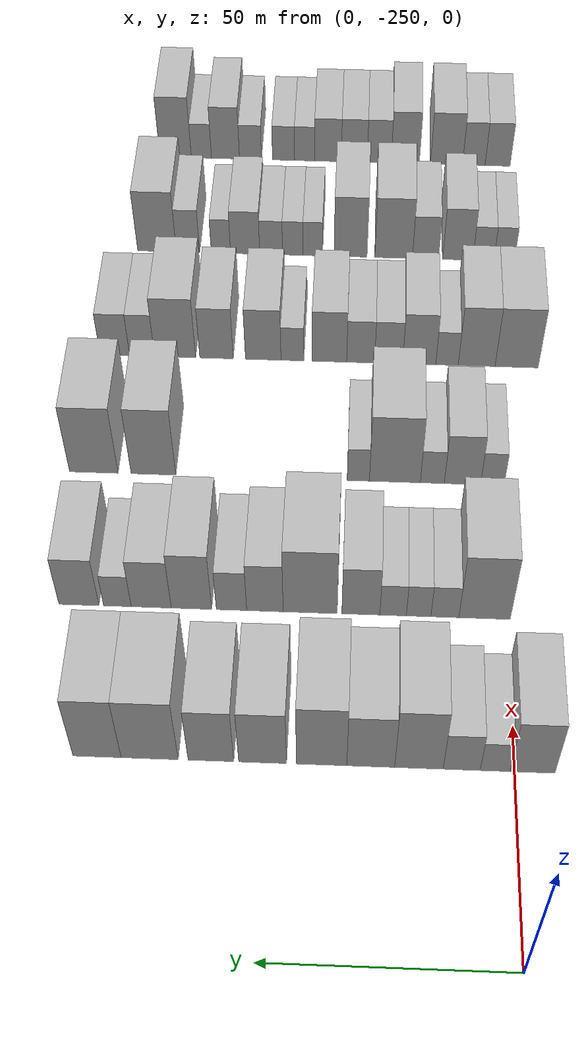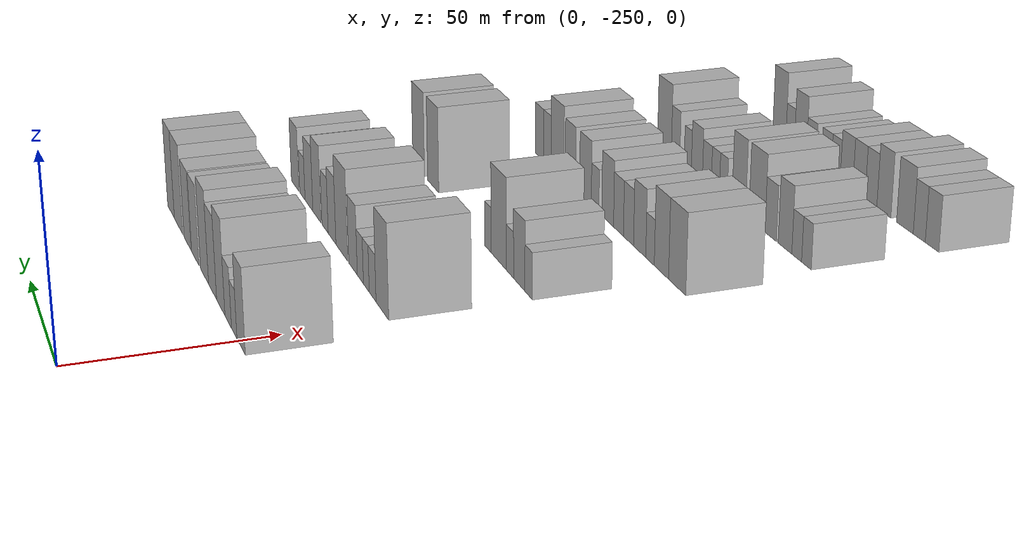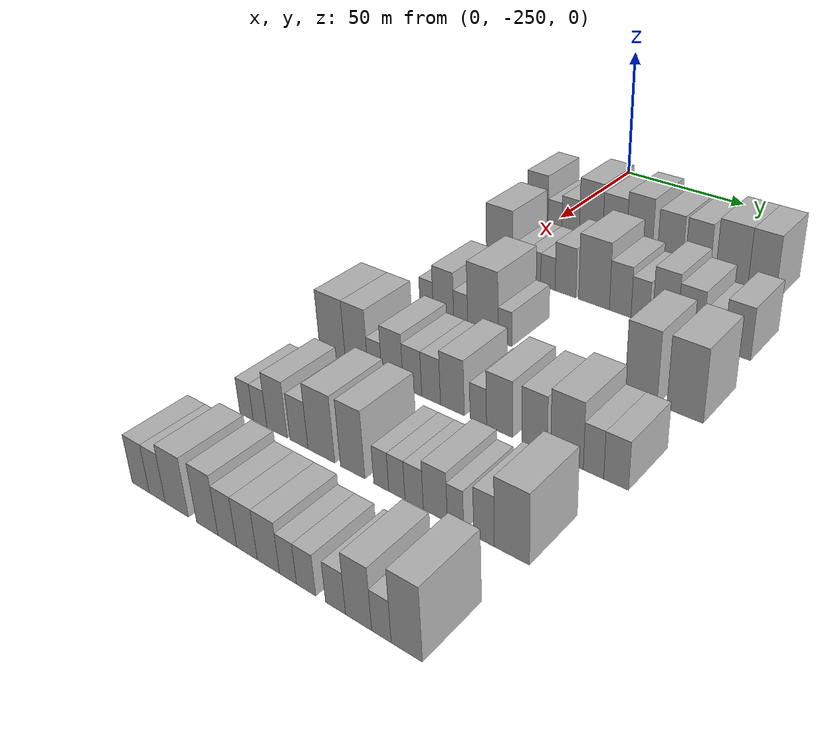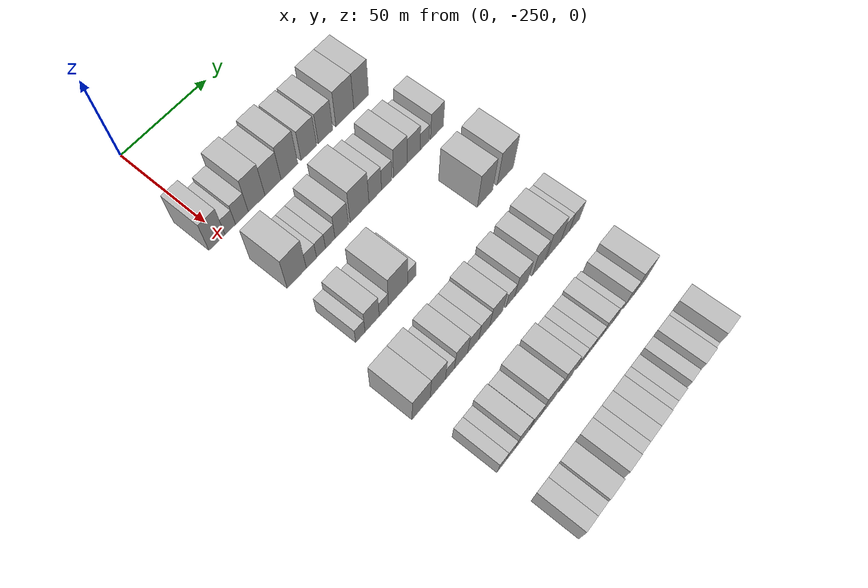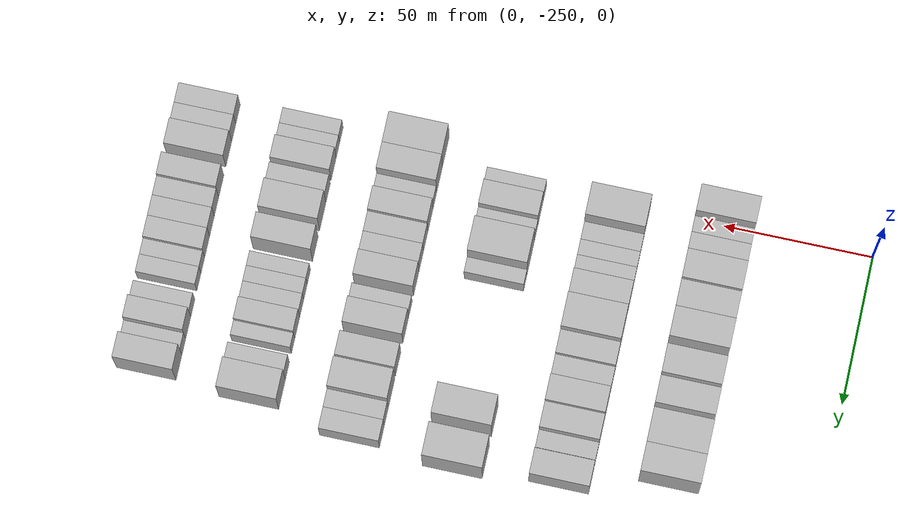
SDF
<sdf version="1.6">
 <world name="default">
  <model name="building_36">
   <static>1</static>
   <pose>50.0000 -253.5233 0 0.000000 0.000000 0.000000</pose>
   <link name="link">
    <pose>0 0 10.50 0 0 0</pose>
    <collision name="collision"><geometry><box><size>20.0000 9.0336 21.0000</size></box></geometry></collision>
    <visual name="visual">
     <cast_shadows>0</cast_shadows>
     <geometry><box><size>20.0000 9.0336 21.0000</size></box></geometry>
     <material>
      <script>
       <uri>model://HANNAS_wall/materials/scripts</uri>
       <uri>model://HANNAS_wall/materials/textures</uri>
       <name>vrc/HANNAS_wall</name>
      </script>
     </material>
    </visual>
   </link>
  </model>
  <model name="building_37">
   <static>1</static>
   <pose>50.0000 -246.0254 0 0.000000 0.000000 0.000000</pose>
   <link name="link">
    <pose>0 0 6.00 0 0 0</pose>
    <collision name="collision"><geometry><box><size>20.0000 5.9621 12.0000</size></box></geometry></collision>
    <visual name="visual">
     <cast_shadows>0</cast_shadows>
     <geometry><box><size>20.0000 5.9621 12.0000</size></box></geometry>
     <material>
      <script>
       <uri>model://HANNAS_wall/materials/scripts</uri>
       <uri>model://HANNAS_wall/materials/textures</uri>
       <name>vrc/HANNAS_wall</name>
      </script>
     </material>
    </visual>
   </link>
  </model>
  <model name="building_38">
   <static>1</static>
   <pose>50.0000 -239.3330 0 0.000000 0.000000 0.000000</pose>
   <link name="link">
    <pose>0 0 7.50 0 0 0</pose>
    <collision name="collision"><geometry><box><size>20.0000 7.4227 15.0000</size></box></geometry></collision>
    <visual name="visual">
     <cast_shadows>0</cast_shadows>
     <geometry><box><size>20.0000 7.4227 15.0000</size></box></geometry>
     <material>
      <script>
       <uri>model://HANNAS_wall/materials/scripts</uri>
       <uri>model://HANNAS_wall/materials/textures</uri>
       <name>vrc/HANNAS_wall</name>
      </script>
     </material>
    </visual>
   </link>
  </model>
  <model name="building_39">
   <static>1</static>
   <pose>50.0000 -230.7598 0 0.000000 0.000000 0.000000</pose>
   <link name="link">
    <pose>0 0 12.00 0 0 0</pose>
    <collision name="collision"><geometry><box><size>20.0000 9.7237 24.0000</size></box></geometry></collision>
    <visual name="visual">
     <cast_shadows>0</cast_shadows>
     <geometry><box><size>20.0000 9.7237 24.0000</size></box></geometry>
     <material>
      <script>
       <uri>model://HANNAS_wall/materials/scripts</uri>
       <uri>model://HANNAS_wall/materials/textures</uri>
       <name>vrc/HANNAS_wall</name>
      </script>
     </material>
    </visual>
   </link>
  </model>
  <model name="building_40">
   <static>1</static>
   <pose>50.0000 -221.0899 0 0.000000 0.000000 0.000000</pose>
   <link name="link">
    <pose>0 0 10.50 0 0 0</pose>
    <collision name="collision"><geometry><box><size>20.0000 9.6162 21.0000</size></box></geometry></collision>
    <visual name="visual">
     <cast_shadows>0</cast_shadows>
     <geometry><box><size>20.0000 9.6162 21.0000</size></box></geometry>
     <material>
      <script>
       <uri>model://HANNAS_wall/materials/scripts</uri>
       <uri>model://HANNAS_wall/materials/textures</uri>
       <name>vrc/HANNAS_wall</name>
      </script>
     </material>
    </visual>
   </link>
  </model>
  <model name="building_41">
   <static>1</static>
   <pose>50.0000 -211.2209 0 0.000000 0.000000 0.000000</pose>
   <link name="link">
    <pose>0 0 12.00 0 0 0</pose>
    <collision name="collision"><geometry><box><size>20.0000 10.1218 24.0000</size></box></geometry></collision>
    <visual name="visual">
     <cast_shadows>0</cast_shadows>
     <geometry><box><size>20.0000 10.1218 24.0000</size></box></geometry>
     <material>
      <script>
       <uri>model://HANNAS_wall/materials/scripts</uri>
       <uri>model://HANNAS_wall/materials/textures</uri>
       <name>vrc/HANNAS_wall</name>
      </script>
     </material>
    </visual>
   </link>
  </model>
  <model name="building_42">
   <static>1</static>
   <pose>50.0000 -199.3403 0 0.000000 0.000000 0.000000</pose>
   <link name="link">
    <pose>0 0 10.50 0 0 0</pose>
    <collision name="collision"><geometry><box><size>20.0000 9.6392 21.0000</size></box></geometry></collision>
    <visual name="visual">
     <cast_shadows>0</cast_shadows>
     <geometry><box><size>20.0000 9.6392 21.0000</size></box></geometry>
     <material>
      <script>
       <uri>model://HANNAS_wall/materials/scripts</uri>
       <uri>model://HANNAS_wall/materials/textures</uri>
       <name>vrc/HANNAS_wall</name>
      </script>
     </material>
    </visual>
   </link>
  </model>
  <model name="building_43">
   <static>1</static>
   <pose>50.0000 -188.9205 0 0.000000 0.000000 0.000000</pose>
   <link name="link">
    <pose>0 0 10.50 0 0 0</pose>
    <collision name="collision"><geometry><box><size>20.0000 9.2004 21.0000</size></box></geometry></collision>
    <visual name="visual">
     <cast_shadows>0</cast_shadows>
     <geometry><box><size>20.0000 9.2004 21.0000</size></box></geometry>
     <material>
      <script>
       <uri>model://HANNAS_wall/materials/scripts</uri>
       <uri>model://HANNAS_wall/materials/textures</uri>
       <name>vrc/HANNAS_wall</name>
      </script>
     </material>
    </visual>
   </link>
  </model>
  <model name="building_44">
   <static>1</static>
   <pose>50.0000 -176.5398 0 0.000000 0.000000 0.000000</pose>
   <link name="link">
    <pose>0 0 12.00 0 0 0</pose>
    <collision name="collision"><geometry><box><size>20.0000 11.5611 24.0000</size></box></geometry></collision>
    <visual name="visual">
     <cast_shadows>0</cast_shadows>
     <geometry><box><size>20.0000 11.5611 24.0000</size></box></geometry>
     <material>
      <script>
       <uri>model://HANNAS_wall/materials/scripts</uri>
       <uri>model://HANNAS_wall/materials/textures</uri>
       <name>vrc/HANNAS_wall</name>
      </script>
     </material>
    </visual>
   </link>
  </model>
  <model name="building_45">
   <static>1</static>
   <pose>50.0000 -165.8892 0 0.000000 0.000000 0.000000</pose>
   <link name="link">
    <pose>0 0 12.00 0 0 0</pose>
    <collision name="collision"><geometry><box><size>20.0000 9.7400 24.0000</size></box></geometry></collision>
    <visual name="visual">
     <cast_shadows>0</cast_shadows>
     <geometry><box><size>20.0000 9.7400 24.0000</size></box></geometry>
     <material>
      <script>
       <uri>model://HANNAS_wall/materials/scripts</uri>
       <uri>model://HANNAS_wall/materials/textures</uri>
       <name>vrc/HANNAS_wall</name>
      </script>
     </material>
    </visual>
   </link>
  </model>
  <model name="building_161">
   <static>1</static>
   <pose>85.0000 -244.9627 0 0.000000 0.000000 0.000000</pose>
   <link name="link">
    <pose>0 0 12.00 0 0 0</pose>
    <collision name="collision"><geometry><box><size>20.0000 11.0042 24.0000</size></box></geometry></collision>
    <visual name="visual">
     <cast_shadows>0</cast_shadows>
     <geometry><box><size>20.0000 11.0042 24.0000</size></box></geometry>
     <material>
      <script>
       <uri>model://HANNAS_wall/materials/scripts</uri>
       <uri>model://HANNAS_wall/materials/textures</uri>
       <name>vrc/HANNAS_wall</name>
      </script>
     </material>
    </visual>
   </link>
  </model>
  <model name="building_162">
   <static>1</static>
   <pose>85.0000 -236.4675 0 0.000000 0.000000 0.000000</pose>
   <link name="link">
    <pose>0 0 6.00 0 0 0</pose>
    <collision name="collision"><geometry><box><size>20.0000 5.9862 12.0000</size></box></geometry></collision>
    <visual name="visual">
     <cast_shadows>0</cast_shadows>
     <geometry><box><size>20.0000 5.9862 12.0000</size></box></geometry>
     <material>
      <script>
       <uri>model://HANNAS_wall/materials/scripts</uri>
       <uri>model://HANNAS_wall/materials/textures</uri>
       <name>vrc/HANNAS_wall</name>
      </script>
     </material>
    </visual>
   </link>
  </model>
  <model name="building_163">
   <static>1</static>
   <pose>85.0000 -230.8353 0 0.000000 0.000000 0.000000</pose>
   <link name="link">
    <pose>0 0 6.00 0 0 0</pose>
    <collision name="collision"><geometry><box><size>20.0000 5.2783 12.0000</size></box></geometry></collision>
    <visual name="visual">
     <cast_shadows>0</cast_shadows>
     <geometry><box><size>20.0000 5.2783 12.0000</size></box></geometry>
     <material>
      <script>
       <uri>model://HANNAS_wall/materials/scripts</uri>
       <uri>model://HANNAS_wall/materials/textures</uri>
       <name>vrc/HANNAS_wall</name>
      </script>
     </material>
    </visual>
   </link>
  </model>
  <model name="building_164">
   <static>1</static>
   <pose>85.0000 -225.3508 0 0.000000 0.000000 0.000000</pose>
   <link name="link">
    <pose>0 0 6.00 0 0 0</pose>
    <collision name="collision"><geometry><box><size>20.0000 5.6907 12.0000</size></box></geometry></collision>
    <visual name="visual">
     <cast_shadows>0</cast_shadows>
     <geometry><box><size>20.0000 5.6907 12.0000</size></box></geometry>
     <material>
      <script>
       <uri>model://HANNAS_wall/materials/scripts</uri>
       <uri>model://HANNAS_wall/materials/textures</uri>
       <name>vrc/HANNAS_wall</name>
      </script>
     </material>
    </visual>
   </link>
  </model>
  <model name="building_165">
   <static>1</static>
   <pose>85.0000 -218.4374 0 0.000000 0.000000 0.000000</pose>
   <link name="link">
    <pose>0 0 9.00 0 0 0</pose>
    <collision name="collision"><geometry><box><size>20.0000 8.1360 18.0000</size></box></geometry></collision>
    <visual name="visual">
     <cast_shadows>0</cast_shadows>
     <geometry><box><size>20.0000 8.1360 18.0000</size></box></geometry>
     <material>
      <script>
       <uri>model://HANNAS_wall/materials/scripts</uri>
       <uri>model://HANNAS_wall/materials/textures</uri>
       <name>vrc/HANNAS_wall</name>
      </script>
     </material>
    </visual>
   </link>
  </model>
  <model name="building_166">
   <static>1</static>
   <pose>85.0000 -207.5686 0 0.000000 0.000000 0.000000</pose>
   <link name="link">
    <pose>0 0 12.00 0 0 0</pose>
    <collision name="collision"><geometry><box><size>20.0000 11.6016 24.0000</size></box></geometry></collision>
    <visual name="visual">
     <cast_shadows>0</cast_shadows>
     <geometry><box><size>20.0000 11.6016 24.0000</size></box></geometry>
     <material>
      <script>
       <uri>model://HANNAS_wall/materials/scripts</uri>
       <uri>model://HANNAS_wall/materials/textures</uri>
       <name>vrc/HANNAS_wall</name>
      </script>
     </material>
    </visual>
   </link>
  </model>
  <model name="building_167">
   <static>1</static>
   <pose>85.0000 -197.8309 0 0.000000 0.000000 0.000000</pose>
   <link name="link">
    <pose>0 0 9.00 0 0 0</pose>
    <collision name="collision"><geometry><box><size>20.0000 7.8739 18.0000</size></box></geometry></collision>
    <visual name="visual">
     <cast_shadows>0</cast_shadows>
     <geometry><box><size>20.0000 7.8739 18.0000</size></box></geometry>
     <material>
      <script>
       <uri>model://HANNAS_wall/materials/scripts</uri>
       <uri>model://HANNAS_wall/materials/textures</uri>
       <name>vrc/HANNAS_wall</name>
      </script>
     </material>
    </visual>
   </link>
  </model>
  <model name="building_168">
   <static>1</static>
   <pose>85.0000 -190.6220 0 0.000000 0.000000 0.000000</pose>
   <link name="link">
    <pose>0 0 7.50 0 0 0</pose>
    <collision name="collision"><geometry><box><size>20.0000 6.5438 15.0000</size></box></geometry></collision>
    <visual name="visual">
     <cast_shadows>0</cast_shadows>
     <geometry><box><size>20.0000 6.5438 15.0000</size></box></geometry>
     <material>
      <script>
       <uri>model://HANNAS_wall/materials/scripts</uri>
       <uri>model://HANNAS_wall/materials/textures</uri>
       <name>vrc/HANNAS_wall</name>
      </script>
     </material>
    </visual>
   </link>
  </model>
  <model name="building_169">
   <static>1</static>
   <pose>85.0000 -181.9804 0 0.000000 0.000000 0.000000</pose>
   <link name="link">
    <pose>0 0 10.50 0 0 0</pose>
    <collision name="collision"><geometry><box><size>20.0000 8.7394 21.0000</size></box></geometry></collision>
    <visual name="visual">
     <cast_shadows>0</cast_shadows>
     <geometry><box><size>20.0000 8.7394 21.0000</size></box></geometry>
     <material>
      <script>
       <uri>model://HANNAS_wall/materials/scripts</uri>
       <uri>model://HANNAS_wall/materials/textures</uri>
       <name>vrc/HANNAS_wall</name>
      </script>
     </material>
    </visual>
   </link>
  </model>
  <model name="building_170">
   <static>1</static>
   <pose>85.0000 -173.2847 0 0.000000 0.000000 0.000000</pose>
   <link name="link">
    <pose>0 0 9.00 0 0 0</pose>
    <collision name="collision"><geometry><box><size>20.0000 8.6521 18.0000</size></box></geometry></collision>
    <visual name="visual">
     <cast_shadows>0</cast_shadows>
     <geometry><box><size>20.0000 8.6521 18.0000</size></box></geometry>
     <material>
      <script>
       <uri>model://HANNAS_wall/materials/scripts</uri>
       <uri>model://HANNAS_wall/materials/textures</uri>
       <name>vrc/HANNAS_wall</name>
      </script>
     </material>
    </visual>
   </link>
  </model>
  <model name="building_171">
   <static>1</static>
   <pose>85.0000 -165.9737 0 0.000000 0.000000 0.000000</pose>
   <link name="link">
    <pose>0 0 6.00 0 0 0</pose>
    <collision name="collision"><geometry><box><size>20.0000 5.9699 12.0000</size></box></geometry></collision>
    <visual name="visual">
     <cast_shadows>0</cast_shadows>
     <geometry><box><size>20.0000 5.9699 12.0000</size></box></geometry>
     <material>
      <script>
       <uri>model://HANNAS_wall/materials/scripts</uri>
       <uri>model://HANNAS_wall/materials/textures</uri>
       <name>vrc/HANNAS_wall</name>
      </script>
     </material>
    </visual>
   </link>
  </model>
  <model name="building_172">
   <static>1</static>
   <pose>85.0000 -157.6527 0 0.000000 0.000000 0.000000</pose>
   <link name="link">
    <pose>0 0 9.00 0 0 0</pose>
    <collision name="collision"><geometry><box><size>20.0000 8.6721 18.0000</size></box></geometry></collision>
    <visual name="visual">
     <cast_shadows>0</cast_shadows>
     <geometry><box><size>20.0000 8.6721 18.0000</size></box></geometry>
     <material>
      <script>
       <uri>model://HANNAS_wall/materials/scripts</uri>
       <uri>model://HANNAS_wall/materials/textures</uri>
       <name>vrc/HANNAS_wall</name>
      </script>
     </material>
    </visual>
   </link>
  </model>
  <model name="building_291">
   <static>1</static>
   <pose>120.0000 -247.7805 0 0.000000 0.000000 0.000000</pose>
   <link name="link">
    <pose>0 0 6.00 0 0 0</pose>
    <collision name="collision"><geometry><box><size>20.0000 5.3666 12.0000</size></box></geometry></collision>
    <visual name="visual">
     <cast_shadows>0</cast_shadows>
     <geometry><box><size>20.0000 5.3666 12.0000</size></box></geometry>
     <material>
      <script>
       <uri>model://HANNAS_wall/materials/scripts</uri>
       <uri>model://HANNAS_wall/materials/textures</uri>
       <name>vrc/HANNAS_wall</name>
      </script>
     </material>
    </visual>
   </link>
  </model>
  <model name="building_292">
   <static>1</static>
   <pose>120.0000 -240.9618 0 0.000000 0.000000 0.000000</pose>
   <link name="link">
    <pose>0 0 9.00 0 0 0</pose>
    <collision name="collision"><geometry><box><size>20.0000 8.2709 18.0000</size></box></geometry></collision>
    <visual name="visual">
     <cast_shadows>0</cast_shadows>
     <geometry><box><size>20.0000 8.2709 18.0000</size></box></geometry>
     <material>
      <script>
       <uri>model://HANNAS_wall/materials/scripts</uri>
       <uri>model://HANNAS_wall/materials/textures</uri>
       <name>vrc/HANNAS_wall</name>
      </script>
     </material>
    </visual>
   </link>
  </model>
  <model name="building_293">
   <static>1</static>
   <pose>120.0000 -234.0902 0 0.000000 0.000000 0.000000</pose>
   <link name="link">
    <pose>0 0 6.00 0 0 0</pose>
    <collision name="collision"><geometry><box><size>20.0000 5.4723 12.0000</size></box></geometry></collision>
    <visual name="visual">
     <cast_shadows>0</cast_shadows>
     <geometry><box><size>20.0000 5.4723 12.0000</size></box></geometry>
     <material>
      <script>
       <uri>model://HANNAS_wall/materials/scripts</uri>
       <uri>model://HANNAS_wall/materials/textures</uri>
       <name>vrc/HANNAS_wall</name>
      </script>
     </material>
    </visual>
   </link>
  </model>
  <model name="building_294">
   <static>1</static>
   <pose>120.0000 -225.5413 0 0.000000 0.000000 0.000000</pose>
   <link name="link">
    <pose>0 0 12.00 0 0 0</pose>
    <collision name="collision"><geometry><box><size>20.0000 11.6255 24.0000</size></box></geometry></collision>
    <visual name="visual">
     <cast_shadows>0</cast_shadows>
     <geometry><box><size>20.0000 11.6255 24.0000</size></box></geometry>
     <material>
      <script>
       <uri>model://HANNAS_wall/materials/scripts</uri>
       <uri>model://HANNAS_wall/materials/textures</uri>
       <name>vrc/HANNAS_wall</name>
      </script>
     </material>
    </visual>
   </link>
  </model>
  <model name="building_295">
   <static>1</static>
   <pose>120.0000 -217.1911 0 0.000000 0.000000 0.000000</pose>
   <link name="link">
    <pose>0 0 6.00 0 0 0</pose>
    <collision name="collision"><geometry><box><size>20.0000 5.0747 12.0000</size></box></geometry></collision>
    <visual name="visual">
     <cast_shadows>0</cast_shadows>
     <geometry><box><size>20.0000 5.0747 12.0000</size></box></geometry>
     <material>
      <script>
       <uri>model://HANNAS_wall/materials/scripts</uri>
       <uri>model://HANNAS_wall/materials/textures</uri>
       <name>vrc/HANNAS_wall</name>
      </script>
     </material>
    </visual>
   </link>
  </model>
  <model name="building_296">
   <static>1</static>
   <pose>120.0000 -170.2387 0 0.000000 0.000000 0.000000</pose>
   <link name="link">
    <pose>0 0 12.00 0 0 0</pose>
    <collision name="collision"><geometry><box><size>20.0000 10.2768 24.0000</size></box></geometry></collision>
    <visual name="visual">
     <cast_shadows>0</cast_shadows>
     <geometry><box><size>20.0000 10.2768 24.0000</size></box></geometry>
     <material>
      <script>
       <uri>model://HANNAS_wall/materials/scripts</uri>
       <uri>model://HANNAS_wall/materials/textures</uri>
       <name>vrc/HANNAS_wall</name>
      </script>
     </material>
    </visual>
   </link>
  </model>
  <model name="building_297">
   <static>1</static>
   <pose>120.0000 -156.5115 0 0.000000 0.000000 0.000000</pose>
   <link name="link">
    <pose>0 0 12.00 0 0 0</pose>
    <collision name="collision"><geometry><box><size>20.0000 11.1776 24.0000</size></box></geometry></collision>
    <visual name="visual">
     <cast_shadows>0</cast_shadows>
     <geometry><box><size>20.0000 11.1776 24.0000</size></box></geometry>
     <material>
      <script>
       <uri>model://HANNAS_wall/materials/scripts</uri>
       <uri>model://HANNAS_wall/materials/textures</uri>
       <name>vrc/HANNAS_wall</name>
      </script>
     </material>
    </visual>
   </link>
  </model>
  <model name="building_408">
   <static>1</static>
   <pose>155.0000 -254.7732 0 0.000000 0.000000 0.000000</pose>
   <link name="link">
    <pose>0 0 10.50 0 0 0</pose>
    <collision name="collision"><geometry><box><size>20.0000 10.4056 21.0000</size></box></geometry></collision>
    <visual name="visual">
     <cast_shadows>0</cast_shadows>
     <geometry><box><size>20.0000 10.4056 21.0000</size></box></geometry>
     <material>
      <script>
       <uri>model://HANNAS_wall/materials/scripts</uri>
       <uri>model://HANNAS_wall/materials/textures</uri>
       <name>vrc/HANNAS_wall</name>
      </script>
     </material>
    </visual>
   </link>
  </model>
  <model name="building_409">
   <static>1</static>
   <pose>155.0000 -245.1203 0 0.000000 0.000000 0.000000</pose>
   <link name="link">
    <pose>0 0 10.50 0 0 0</pose>
    <collision name="collision"><geometry><box><size>20.0000 8.9001 21.0000</size></box></geometry></collision>
    <visual name="visual">
     <cast_shadows>0</cast_shadows>
     <geometry><box><size>20.0000 8.9001 21.0000</size></box></geometry>
     <material>
      <script>
       <uri>model://HANNAS_wall/materials/scripts</uri>
       <uri>model://HANNAS_wall/materials/textures</uri>
       <name>vrc/HANNAS_wall</name>
      </script>
     </material>
    </visual>
   </link>
  </model>
  <model name="building_410">
   <static>1</static>
   <pose>155.0000 -237.9542 0 0.000000 0.000000 0.000000</pose>
   <link name="link">
    <pose>0 0 6.00 0 0 0</pose>
    <collision name="collision"><geometry><box><size>20.0000 5.4320 12.0000</size></box></geometry></collision>
    <visual name="visual">
     <cast_shadows>0</cast_shadows>
     <geometry><box><size>20.0000 5.4320 12.0000</size></box></geometry>
     <material>
      <script>
       <uri>model://HANNAS_wall/materials/scripts</uri>
       <uri>model://HANNAS_wall/materials/textures</uri>
       <name>vrc/HANNAS_wall</name>
      </script>
     </material>
    </visual>
   </link>
  </model>
  <model name="building_411">
   <static>1</static>
   <pose>155.0000 -231.2307 0 0.000000 0.000000 0.000000</pose>
   <link name="link">
    <pose>0 0 9.00 0 0 0</pose>
    <collision name="collision"><geometry><box><size>20.0000 8.0151 18.0000</size></box></geometry></collision>
    <visual name="visual">
     <cast_shadows>0</cast_shadows>
     <geometry><box><size>20.0000 8.0151 18.0000</size></box></geometry>
     <material>
      <script>
       <uri>model://HANNAS_wall/materials/scripts</uri>
       <uri>model://HANNAS_wall/materials/textures</uri>
       <name>vrc/HANNAS_wall</name>
      </script>
     </material>
    </visual>
   </link>
  </model>
  <model name="building_412">
   <static>1</static>
   <pose>155.0000 -223.8261 0 0.000000 0.000000 0.000000</pose>
   <link name="link">
    <pose>0 0 7.50 0 0 0</pose>
    <collision name="collision"><geometry><box><size>20.0000 6.7941 15.0000</size></box></geometry></collision>
    <visual name="visual">
     <cast_shadows>0</cast_shadows>
     <geometry><box><size>20.0000 6.7941 15.0000</size></box></geometry>
     <material>
      <script>
       <uri>model://HANNAS_wall/materials/scripts</uri>
       <uri>model://HANNAS_wall/materials/textures</uri>
       <name>vrc/HANNAS_wall</name>
      </script>
     </material>
    </visual>
   </link>
  </model>
  <model name="building_413">
   <static>1</static>
   <pose>155.0000 -217.0500 0 0.000000 0.000000 0.000000</pose>
   <link name="link">
    <pose>0 0 7.50 0 0 0</pose>
    <collision name="collision"><geometry><box><size>20.0000 6.7580 15.0000</size></box></geometry></collision>
    <visual name="visual">
     <cast_shadows>0</cast_shadows>
     <geometry><box><size>20.0000 6.7580 15.0000</size></box></geometry>
     <material>
      <script>
       <uri>model://HANNAS_wall/materials/scripts</uri>
       <uri>model://HANNAS_wall/materials/textures</uri>
       <name>vrc/HANNAS_wall</name>
      </script>
     </material>
    </visual>
   </link>
  </model>
  <model name="building_414">
   <static>1</static>
   <pose>155.0000 -209.4854 0 0.000000 0.000000 0.000000</pose>
   <link name="link">
    <pose>0 0 9.00 0 0 0</pose>
    <collision name="collision"><geometry><box><size>20.0000 8.3712 18.0000</size></box></geometry></collision>
    <visual name="visual">
     <cast_shadows>0</cast_shadows>
     <geometry><box><size>20.0000 8.3712 18.0000</size></box></geometry>
     <material>
      <script>
       <uri>model://HANNAS_wall/materials/scripts</uri>
       <uri>model://HANNAS_wall/materials/textures</uri>
       <name>vrc/HANNAS_wall</name>
      </script>
     </material>
    </visual>
   </link>
  </model>
  <model name="building_415">
   <static>1</static>
   <pose>155.0000 -200.5211 0 0.000000 0.000000 0.000000</pose>
   <link name="link">
    <pose>0 0 6.00 0 0 0</pose>
    <collision name="collision"><geometry><box><size>20.0000 5.5573 12.0000</size></box></geometry></collision>
    <visual name="visual">
     <cast_shadows>0</cast_shadows>
     <geometry><box><size>20.0000 5.5573 12.0000</size></box></geometry>
     <material>
      <script>
       <uri>model://HANNAS_wall/materials/scripts</uri>
       <uri>model://HANNAS_wall/materials/textures</uri>
       <name>vrc/HANNAS_wall</name>
      </script>
     </material>
    </visual>
   </link>
  </model>
  <model name="building_416">
   <static>1</static>
   <pose>155.0000 -193.4323 0 0.000000 0.000000 0.000000</pose>
   <link name="link">
    <pose>0 0 9.00 0 0 0</pose>
    <collision name="collision"><geometry><box><size>20.0000 8.6204 18.0000</size></box></geometry></collision>
    <visual name="visual">
     <cast_shadows>0</cast_shadows>
     <geometry><box><size>20.0000 8.6204 18.0000</size></box></geometry>
     <material>
      <script>
       <uri>model://HANNAS_wall/materials/scripts</uri>
       <uri>model://HANNAS_wall/materials/textures</uri>
       <name>vrc/HANNAS_wall</name>
      </script>
     </material>
    </visual>
   </link>
  </model>
  <model name="building_417">
   <static>1</static>
   <pose>155.0000 -182.0601 0 0.000000 0.000000 0.000000</pose>
   <link name="link">
    <pose>0 0 9.00 0 0 0</pose>
    <collision name="collision"><geometry><box><size>20.0000 8.1240 18.0000</size></box></geometry></collision>
    <visual name="visual">
     <cast_shadows>0</cast_shadows>
     <geometry><box><size>20.0000 8.1240 18.0000</size></box></geometry>
     <material>
      <script>
       <uri>model://HANNAS_wall/materials/scripts</uri>
       <uri>model://HANNAS_wall/materials/textures</uri>
       <name>vrc/HANNAS_wall</name>
      </script>
     </material>
    </visual>
   </link>
  </model>
  <model name="building_418">
   <static>1</static>
   <pose>155.0000 -171.9781 0 0.000000 0.000000 0.000000</pose>
   <link name="link">
    <pose>0 0 10.50 0 0 0</pose>
    <collision name="collision"><geometry><box><size>20.0000 10.0400 21.0000</size></box></geometry></collision>
    <visual name="visual">
     <cast_shadows>0</cast_shadows>
     <geometry><box><size>20.0000 10.0400 21.0000</size></box></geometry>
     <material>
      <script>
       <uri>model://HANNAS_wall/materials/scripts</uri>
       <uri>model://HANNAS_wall/materials/textures</uri>
       <name>vrc/HANNAS_wall</name>
      </script>
     </material>
    </visual>
   </link>
  </model>
  <model name="building_419">
   <static>1</static>
   <pose>155.0000 -163.9209 0 0.000000 0.000000 0.000000</pose>
   <link name="link">
    <pose>0 0 7.50 0 0 0</pose>
    <collision name="collision"><geometry><box><size>20.0000 6.0745 15.0000</size></box></geometry></collision>
    <visual name="visual">
     <cast_shadows>0</cast_shadows>
     <geometry><box><size>20.0000 6.0745 15.0000</size></box></geometry>
     <material>
      <script>
       <uri>model://HANNAS_wall/materials/scripts</uri>
       <uri>model://HANNAS_wall/materials/textures</uri>
       <name>vrc/HANNAS_wall</name>
      </script>
     </material>
    </visual>
   </link>
  </model>
  <model name="building_420">
   <static>1</static>
   <pose>155.0000 -157.2814 0 0.000000 0.000000 0.000000</pose>
   <link name="link">
    <pose>0 0 7.50 0 0 0</pose>
    <collision name="collision"><geometry><box><size>20.0000 7.2046 15.0000</size></box></geometry></collision>
    <visual name="visual">
     <cast_shadows>0</cast_shadows>
     <geometry><box><size>20.0000 7.2046 15.0000</size></box></geometry>
     <material>
      <script>
       <uri>model://HANNAS_wall/materials/scripts</uri>
       <uri>model://HANNAS_wall/materials/textures</uri>
       <name>vrc/HANNAS_wall</name>
      </script>
     </material>
    </visual>
   </link>
  </model>
  <model name="building_538">
   <static>1</static>
   <pose>190.0000 -253.0833 0 0.000000 0.000000 0.000000</pose>
   <link name="link">
    <pose>0 0 6.00 0 0 0</pose>
    <collision name="collision"><geometry><box><size>20.0000 5.2453 12.0000</size></box></geometry></collision>
    <visual name="visual">
     <cast_shadows>0</cast_shadows>
     <geometry><box><size>20.0000 5.2453 12.0000</size></box></geometry>
     <material>
      <script>
       <uri>model://HANNAS_wall/materials/scripts</uri>
       <uri>model://HANNAS_wall/materials/textures</uri>
       <name>vrc/HANNAS_wall</name>
      </script>
     </material>
    </visual>
   </link>
  </model>
  <model name="building_539">
   <static>1</static>
   <pose>190.0000 -247.7629 0 0.000000 0.000000 0.000000</pose>
   <link name="link">
    <pose>0 0 6.00 0 0 0</pose>
    <collision name="collision"><geometry><box><size>20.0000 5.3955 12.0000</size></box></geometry></collision>
    <visual name="visual">
     <cast_shadows>0</cast_shadows>
     <geometry><box><size>20.0000 5.3955 12.0000</size></box></geometry>
     <material>
      <script>
       <uri>model://HANNAS_wall/materials/scripts</uri>
       <uri>model://HANNAS_wall/materials/textures</uri>
       <name>vrc/HANNAS_wall</name>
      </script>
     </material>
    </visual>
   </link>
  </model>
  <model name="building_540">
   <static>1</static>
   <pose>190.0000 -241.1980 0 0.000000 0.000000 0.000000</pose>
   <link name="link">
    <pose>0 0 9.00 0 0 0</pose>
    <collision name="collision"><geometry><box><size>20.0000 7.7344 18.0000</size></box></geometry></collision>
    <visual name="visual">
     <cast_shadows>0</cast_shadows>
     <geometry><box><size>20.0000 7.7344 18.0000</size></box></geometry>
     <material>
      <script>
       <uri>model://HANNAS_wall/materials/scripts</uri>
       <uri>model://HANNAS_wall/materials/textures</uri>
       <name>vrc/HANNAS_wall</name>
      </script>
     </material>
    </visual>
   </link>
  </model>
  <model name="building_541">
   <static>1</static>
   <pose>190.0000 -232.9864 0 0.000000 0.000000 0.000000</pose>
   <link name="link">
    <pose>0 0 7.50 0 0 0</pose>
    <collision name="collision"><geometry><box><size>20.0000 6.6888 15.0000</size></box></geometry></collision>
    <visual name="visual">
     <cast_shadows>0</cast_shadows>
     <geometry><box><size>20.0000 6.6888 15.0000</size></box></geometry>
     <material>
      <script>
       <uri>model://HANNAS_wall/materials/scripts</uri>
       <uri>model://HANNAS_wall/materials/textures</uri>
       <name>vrc/HANNAS_wall</name>
      </script>
     </material>
    </visual>
   </link>
  </model>
  <model name="building_542">
   <static>1</static>
   <pose>190.0000 -224.8368 0 0.000000 0.000000 0.000000</pose>
   <link name="link">
    <pose>0 0 10.50 0 0 0</pose>
    <collision name="collision"><geometry><box><size>20.0000 9.6103 21.0000</size></box></geometry></collision>
    <visual name="visual">
     <cast_shadows>0</cast_shadows>
     <geometry><box><size>20.0000 9.6103 21.0000</size></box></geometry>
     <material>
      <script>
       <uri>model://HANNAS_wall/materials/scripts</uri>
       <uri>model://HANNAS_wall/materials/textures</uri>
       <name>vrc/HANNAS_wall</name>
      </script>
     </material>
    </visual>
   </link>
  </model>
  <model name="building_543">
   <static>1</static>
   <pose>190.0000 -213.8173 0 0.000000 0.000000 0.000000</pose>
   <link name="link">
    <pose>0 0 10.50 0 0 0</pose>
    <collision name="collision"><geometry><box><size>20.0000 8.4287 21.0000</size></box></geometry></collision>
    <visual name="visual">
     <cast_shadows>0</cast_shadows>
     <geometry><box><size>20.0000 8.4287 21.0000</size></box></geometry>
     <material>
      <script>
       <uri>model://HANNAS_wall/materials/scripts</uri>
       <uri>model://HANNAS_wall/materials/textures</uri>
       <name>vrc/HANNAS_wall</name>
      </script>
     </material>
    </visual>
   </link>
  </model>
  <model name="building_544">
   <static>1</static>
   <pose>190.0000 -204.1167 0 0.000000 0.000000 0.000000</pose>
   <link name="link">
    <pose>0 0 6.00 0 0 0</pose>
    <collision name="collision"><geometry><box><size>20.0000 4.9724 12.0000</size></box></geometry></collision>
    <visual name="visual">
     <cast_shadows>0</cast_shadows>
     <geometry><box><size>20.0000 4.9724 12.0000</size></box></geometry>
     <material>
      <script>
       <uri>model://HANNAS_wall/materials/scripts</uri>
       <uri>model://HANNAS_wall/materials/textures</uri>
       <name>vrc/HANNAS_wall</name>
      </script>
     </material>
    </visual>
   </link>
  </model>
  <model name="building_545">
   <static>1</static>
   <pose>190.0000 -199.0009 0 0.000000 0.000000 0.000000</pose>
   <link name="link">
    <pose>0 0 6.00 0 0 0</pose>
    <collision name="collision"><geometry><box><size>20.0000 5.2593 12.0000</size></box></geometry></collision>
    <visual name="visual">
     <cast_shadows>0</cast_shadows>
     <geometry><box><size>20.0000 5.2593 12.0000</size></box></geometry>
     <material>
      <script>
       <uri>model://HANNAS_wall/materials/scripts</uri>
       <uri>model://HANNAS_wall/materials/textures</uri>
       <name>vrc/HANNAS_wall</name>
      </script>
     </material>
    </visual>
   </link>
  </model>
  <model name="building_546">
   <static>1</static>
   <pose>190.0000 -193.4387 0 0.000000 0.000000 0.000000</pose>
   <link name="link">
    <pose>0 0 6.00 0 0 0</pose>
    <collision name="collision"><geometry><box><size>20.0000 5.8651 12.0000</size></box></geometry></collision>
    <visual name="visual">
     <cast_shadows>0</cast_shadows>
     <geometry><box><size>20.0000 5.8651 12.0000</size></box></geometry>
     <material>
      <script>
       <uri>model://HANNAS_wall/materials/scripts</uri>
       <uri>model://HANNAS_wall/materials/textures</uri>
       <name>vrc/HANNAS_wall</name>
      </script>
     </material>
    </visual>
   </link>
  </model>
  <model name="building_547">
   <static>1</static>
   <pose>190.0000 -186.7671 0 0.000000 0.000000 0.000000</pose>
   <link name="link">
    <pose>0 0 7.50 0 0 0</pose>
    <collision name="collision"><geometry><box><size>20.0000 7.4780 15.0000</size></box></geometry></collision>
    <visual name="visual">
     <cast_shadows>0</cast_shadows>
     <geometry><box><size>20.0000 7.4780 15.0000</size></box></geometry>
     <material>
      <script>
       <uri>model://HANNAS_wall/materials/scripts</uri>
       <uri>model://HANNAS_wall/materials/textures</uri>
       <name>vrc/HANNAS_wall</name>
      </script>
     </material>
    </visual>
   </link>
  </model>
  <model name="building_548">
   <static>1</static>
   <pose>190.0000 -180.5573 0 0.000000 0.000000 0.000000</pose>
   <link name="link">
    <pose>0 0 6.00 0 0 0</pose>
    <collision name="collision"><geometry><box><size>20.0000 4.9416 12.0000</size></box></geometry></collision>
    <visual name="visual">
     <cast_shadows>0</cast_shadows>
     <geometry><box><size>20.0000 4.9416 12.0000</size></box></geometry>
     <material>
      <script>
       <uri>model://HANNAS_wall/materials/scripts</uri>
       <uri>model://HANNAS_wall/materials/textures</uri>
       <name>vrc/HANNAS_wall</name>
      </script>
     </material>
    </visual>
   </link>
  </model>
  <model name="building_549">
   <static>1</static>
   <pose>190.0000 -172.0745 0 0.000000 0.000000 0.000000</pose>
   <link name="link">
    <pose>0 0 7.50 0 0 0</pose>
    <collision name="collision"><geometry><box><size>20.0000 6.0240 15.0000</size></box></geometry></collision>
    <visual name="visual">
     <cast_shadows>0</cast_shadows>
     <geometry><box><size>20.0000 6.0240 15.0000</size></box></geometry>
     <material>
      <script>
       <uri>model://HANNAS_wall/materials/scripts</uri>
       <uri>model://HANNAS_wall/materials/textures</uri>
       <name>vrc/HANNAS_wall</name>
      </script>
     </material>
    </visual>
   </link>
  </model>
  <model name="building_550">
   <static>1</static>
   <pose>190.0000 -164.0935 0 0.000000 0.000000 0.000000</pose>
   <link name="link">
    <pose>0 0 10.50 0 0 0</pose>
    <collision name="collision"><geometry><box><size>20.0000 9.9379 21.0000</size></box></geometry></collision>
    <visual name="visual">
     <cast_shadows>0</cast_shadows>
     <geometry><box><size>20.0000 9.9379 21.0000</size></box></geometry>
     <material>
      <script>
       <uri>model://HANNAS_wall/materials/scripts</uri>
       <uri>model://HANNAS_wall/materials/textures</uri>
       <name>vrc/HANNAS_wall</name>
      </script>
     </material>
    </visual>
   </link>
  </model>
  <model name="building_663">
   <static>1</static>
   <pose>225.0000 -252.6135 0 0.000000 0.000000 0.000000</pose>
   <link name="link">
    <pose>0 0 7.50 0 0 0</pose>
    <collision name="collision"><geometry><box><size>20.0000 6.7208 15.0000</size></box></geometry></collision>
    <visual name="visual">
     <cast_shadows>0</cast_shadows>
     <geometry><box><size>20.0000 6.7208 15.0000</size></box></geometry>
     <material>
      <script>
       <uri>model://HANNAS_wall/materials/scripts</uri>
       <uri>model://HANNAS_wall/materials/textures</uri>
       <name>vrc/HANNAS_wall</name>
      </script>
     </material>
    </visual>
   </link>
  </model>
  <model name="building_664">
   <static>1</static>
   <pose>225.0000 -246.2177 0 0.000000 0.000000 0.000000</pose>
   <link name="link">
    <pose>0 0 7.50 0 0 0</pose>
    <collision name="collision"><geometry><box><size>20.0000 6.0707 15.0000</size></box></geometry></collision>
    <visual name="visual">
     <cast_shadows>0</cast_shadows>
     <geometry><box><size>20.0000 6.0707 15.0000</size></box></geometry>
     <material>
      <script>
       <uri>model://HANNAS_wall/materials/scripts</uri>
       <uri>model://HANNAS_wall/materials/textures</uri>
       <name>vrc/HANNAS_wall</name>
      </script>
     </material>
    </visual>
   </link>
  </model>
  <model name="building_665">
   <static>1</static>
   <pose>225.0000 -238.8650 0 0.000000 0.000000 0.000000</pose>
   <link name="link">
    <pose>0 0 9.00 0 0 0</pose>
    <collision name="collision"><geometry><box><size>20.0000 8.6347 18.0000</size></box></geometry></collision>
    <visual name="visual">
     <cast_shadows>0</cast_shadows>
     <geometry><box><size>20.0000 8.6347 18.0000</size></box></geometry>
     <material>
      <script>
       <uri>model://HANNAS_wall/materials/scripts</uri>
       <uri>model://HANNAS_wall/materials/textures</uri>
       <name>vrc/HANNAS_wall</name>
      </script>
     </material>
    </visual>
   </link>
  </model>
  <model name="building_666">
   <static>1</static>
   <pose>225.0000 -227.7536 0 0.000000 0.000000 0.000000</pose>
   <link name="link">
    <pose>0 0 9.00 0 0 0</pose>
    <collision name="collision"><geometry><box><size>20.0000 7.5882 18.0000</size></box></geometry></collision>
    <visual name="visual">
     <cast_shadows>0</cast_shadows>
     <geometry><box><size>20.0000 7.5882 18.0000</size></box></geometry>
     <material>
      <script>
       <uri>model://HANNAS_wall/materials/scripts</uri>
       <uri>model://HANNAS_wall/materials/textures</uri>
       <name>vrc/HANNAS_wall</name>
      </script>
     </material>
    </visual>
   </link>
  </model>
  <model name="building_667">
   <static>1</static>
   <pose>225.0000 -220.7228 0 0.000000 0.000000 0.000000</pose>
   <link name="link">
    <pose>0 0 7.50 0 0 0</pose>
    <collision name="collision"><geometry><box><size>20.0000 6.4732 15.0000</size></box></geometry></collision>
    <visual name="visual">
     <cast_shadows>0</cast_shadows>
     <geometry><box><size>20.0000 6.4732 15.0000</size></box></geometry>
     <material>
      <script>
       <uri>model://HANNAS_wall/materials/scripts</uri>
       <uri>model://HANNAS_wall/materials/textures</uri>
       <name>vrc/HANNAS_wall</name>
      </script>
     </material>
    </visual>
   </link>
  </model>
  <model name="building_668">
   <static>1</static>
   <pose>225.0000 -214.0054 0 0.000000 0.000000 0.000000</pose>
   <link name="link">
    <pose>0 0 7.50 0 0 0</pose>
    <collision name="collision"><geometry><box><size>20.0000 6.9617 15.0000</size></box></geometry></collision>
    <visual name="visual">
     <cast_shadows>0</cast_shadows>
     <geometry><box><size>20.0000 6.9617 15.0000</size></box></geometry>
     <material>
      <script>
       <uri>model://HANNAS_wall/materials/scripts</uri>
       <uri>model://HANNAS_wall/materials/textures</uri>
       <name>vrc/HANNAS_wall</name>
      </script>
     </material>
    </visual>
   </link>
  </model>
  <model name="building_669">
   <static>1</static>
   <pose>225.0000 -206.9088 0 0.000000 0.000000 0.000000</pose>
   <link name="link">
    <pose>0 0 7.50 0 0 0</pose>
    <collision name="collision"><geometry><box><size>20.0000 7.2314 15.0000</size></box></geometry></collision>
    <visual name="visual">
     <cast_shadows>0</cast_shadows>
     <geometry><box><size>20.0000 7.2314 15.0000</size></box></geometry>
     <material>
      <script>
       <uri>model://HANNAS_wall/materials/scripts</uri>
       <uri>model://HANNAS_wall/materials/textures</uri>
       <name>vrc/HANNAS_wall</name>
      </script>
     </material>
    </visual>
   </link>
  </model>
  <model name="building_670">
   <static>1</static>
   <pose>225.0000 -200.5908 0 0.000000 0.000000 0.000000</pose>
   <link name="link">
    <pose>0 0 6.00 0 0 0</pose>
    <collision name="collision"><geometry><box><size>20.0000 5.4045 12.0000</size></box></geometry></collision>
    <visual name="visual">
     <cast_shadows>0</cast_shadows>
     <geometry><box><size>20.0000 5.4045 12.0000</size></box></geometry>
     <material>
      <script>
       <uri>model://HANNAS_wall/materials/scripts</uri>
       <uri>model://HANNAS_wall/materials/textures</uri>
       <name>vrc/HANNAS_wall</name>
      </script>
     </material>
    </visual>
   </link>
  </model>
  <model name="building_671">
   <static>1</static>
   <pose>225.0000 -194.9052 0 0.000000 0.000000 0.000000</pose>
   <link name="link">
    <pose>0 0 6.00 0 0 0</pose>
    <collision name="collision"><geometry><box><size>20.0000 5.9668 12.0000</size></box></geometry></collision>
    <visual name="visual">
     <cast_shadows>0</cast_shadows>
     <geometry><box><size>20.0000 5.9668 12.0000</size></box></geometry>
     <material>
      <script>
       <uri>model://HANNAS_wall/materials/scripts</uri>
       <uri>model://HANNAS_wall/materials/textures</uri>
       <name>vrc/HANNAS_wall</name>
      </script>
     </material>
    </visual>
   </link>
  </model>
  <model name="building_672">
   <static>1</static>
   <pose>225.0000 -185.9449 0 0.000000 0.000000 0.000000</pose>
   <link name="link">
    <pose>0 0 6.00 0 0 0</pose>
    <collision name="collision"><geometry><box><size>20.0000 5.9538 12.0000</size></box></geometry></collision>
    <visual name="visual">
     <cast_shadows>0</cast_shadows>
     <geometry><box><size>20.0000 5.9538 12.0000</size></box></geometry>
     <material>
      <script>
       <uri>model://HANNAS_wall/materials/scripts</uri>
       <uri>model://HANNAS_wall/materials/textures</uri>
       <name>vrc/HANNAS_wall</name>
      </script>
     </material>
    </visual>
   </link>
  </model>
  <model name="building_673">
   <static>1</static>
   <pose>225.0000 -179.1758 0 0.000000 0.000000 0.000000</pose>
   <link name="link">
    <pose>0 0 9.00 0 0 0</pose>
    <collision name="collision"><geometry><box><size>20.0000 7.5844 18.0000</size></box></geometry></collision>
    <visual name="visual">
     <cast_shadows>0</cast_shadows>
     <geometry><box><size>20.0000 7.5844 18.0000</size></box></geometry>
     <material>
      <script>
       <uri>model://HANNAS_wall/materials/scripts</uri>
       <uri>model://HANNAS_wall/materials/textures</uri>
       <name>vrc/HANNAS_wall</name>
      </script>
     </material>
    </visual>
   </link>
  </model>
  <model name="building_674">
   <static>1</static>
   <pose>225.0000 -172.6505 0 0.000000 0.000000 0.000000</pose>
   <link name="link">
    <pose>0 0 6.00 0 0 0</pose>
    <collision name="collision"><geometry><box><size>20.0000 5.4661 12.0000</size></box></geometry></collision>
    <visual name="visual">
     <cast_shadows>0</cast_shadows>
     <geometry><box><size>20.0000 5.4661 12.0000</size></box></geometry>
     <material>
      <script>
       <uri>model://HANNAS_wall/materials/scripts</uri>
       <uri>model://HANNAS_wall/materials/textures</uri>
       <name>vrc/HANNAS_wall</name>
      </script>
     </material>
    </visual>
   </link>
  </model>
  <model name="building_675">
   <static>1</static>
   <pose>225.0000 -165.6602 0 0.000000 0.000000 0.000000</pose>
   <link name="link">
    <pose>0 0 10.50 0 0 0</pose>
    <collision name="collision"><geometry><box><size>20.0000 8.5145 21.0000</size></box></geometry></collision>
    <visual name="visual">
     <cast_shadows>0</cast_shadows>
     <geometry><box><size>20.0000 8.5145 21.0000</size></box></geometry>
     <material>
      <script>
       <uri>model://HANNAS_wall/materials/scripts</uri>
       <uri>model://HANNAS_wall/materials/textures</uri>
       <name>vrc/HANNAS_wall</name>
      </script>
     </material>
    </visual>
   </link>
  </model>
 </world>
</sdf>
